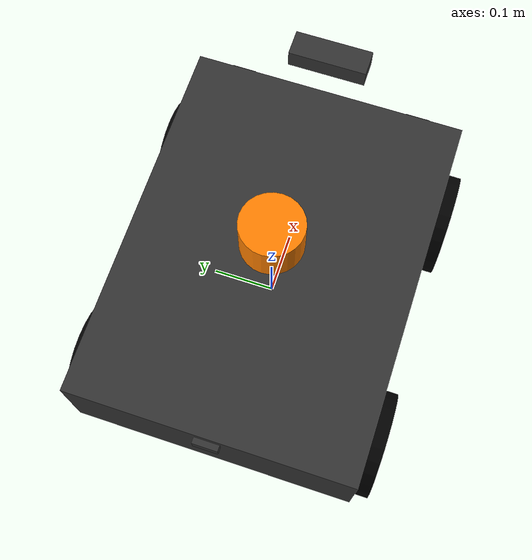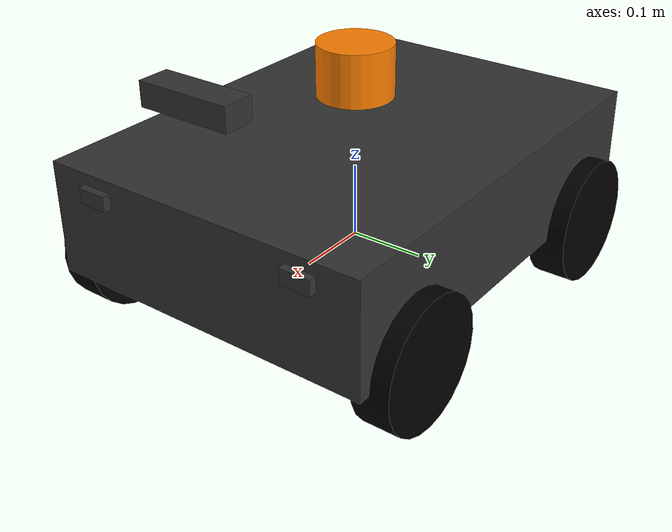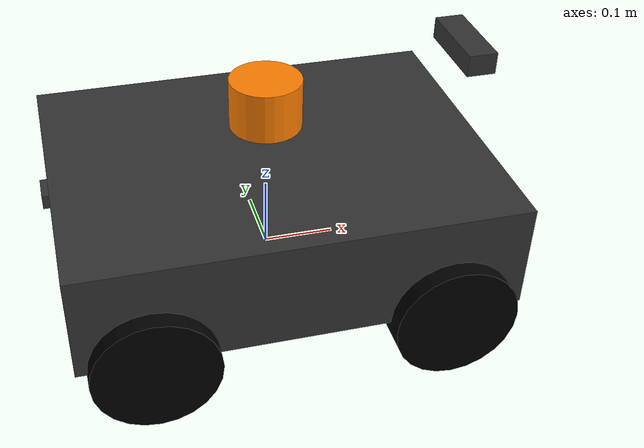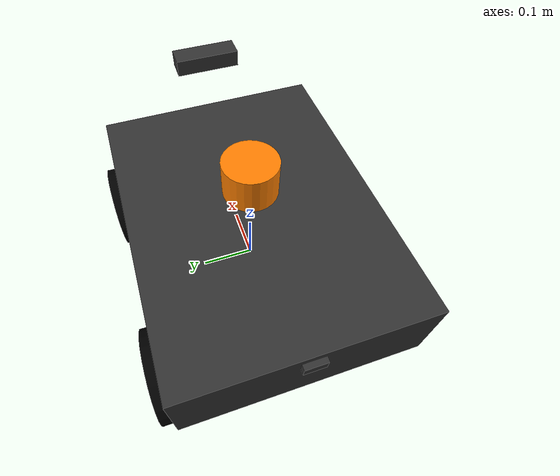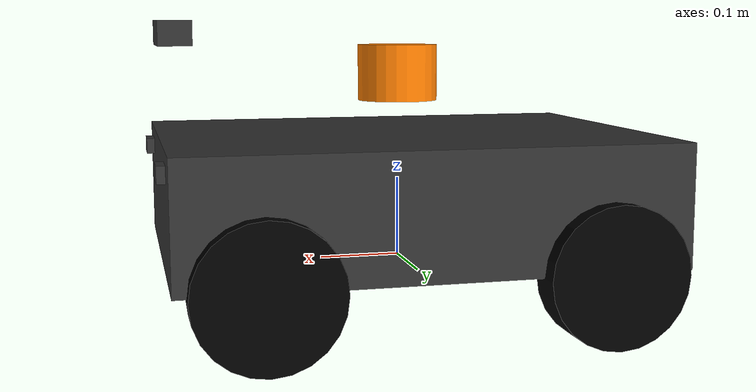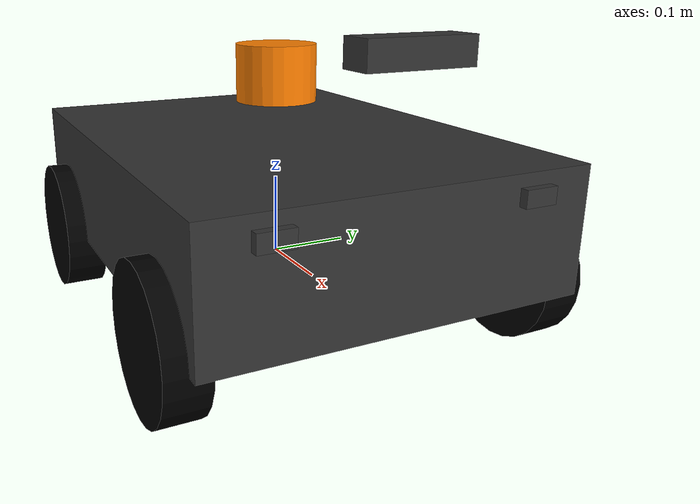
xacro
<?xml version="1.0"?>
<robot name="safer_robot" xmlns:xacro="http://www.ros.org/wiki/xacro">

  <!-- ── Constants ─────────────────────────────────────────────────────────── -->
  <xacro:property name="wheel_radius"   value="0.085"/>
  <xacro:property name="wheel_width"    value="0.05"/>
  <xacro:property name="wheel_base"     value="0.45"/>
  <xacro:property name="chassis_length" value="0.60"/>
  <xacro:property name="chassis_width"  value="0.45"/>
  <xacro:property name="chassis_height" value="0.15"/>
  <xacro:property name="chassis_mass"   value="8.0"/>
  <xacro:property name="wheel_mass"     value="0.5"/>

  <!-- ── Materials ─────────────────────────────────────────────────────────── -->
  <material name="dark_grey">
    <color rgba="0.2 0.2 0.2 1.0"/>
  </material>
  <material name="orange">
    <color rgba="1.0 0.5 0.0 1.0"/>
  </material>
  <material name="black">
    <color rgba="0.0 0.0 0.0 1.0"/>
  </material>

  <!-- ── Inertia macros ─────────────────────────────────────────────────────── -->
  <xacro:macro name="box_inertia" params="m x y z">
    <inertial>
      <mass value="${m}"/>
      <inertia ixx="${m*(y*y+z*z)/12}" ixy="0" ixz="0"
               iyy="${m*(x*x+z*z)/12}" iyz="0"
               izz="${m*(x*x+y*y)/12}"/>
    </inertial>
  </xacro:macro>

  <xacro:macro name="cylinder_inertia" params="m r h">
    <inertial>
      <mass value="${m}"/>
      <inertia ixx="${m*(3*r*r+h*h)/12}" ixy="0" ixz="0"
               iyy="${m*(3*r*r+h*h)/12}" iyz="0"
               izz="${m*r*r/2}"/>
    </inertial>
  </xacro:macro>

  <!-- ── Base footprint ─────────────────────────────────────────────────────── -->
  <link name="base_footprint"/>

  <joint name="base_footprint_joint" type="fixed">
    <parent link="base_footprint"/>
    <child  link="base_link"/>
    <origin xyz="0 0 ${wheel_radius}" rpy="0 0 0"/>
  </joint>

  <!-- ── Chassis ────────────────────────────────────────────────────────────── -->
  <link name="base_link">
    <visual>
      <geometry>
        <box size="${chassis_length} ${chassis_width} ${chassis_height}"/>
      </geometry>
      <material name="dark_grey"/>
    </visual>
    <collision>
      <geometry>
        <box size="${chassis_length} ${chassis_width} ${chassis_height}"/>
      </geometry>
    </collision>
    <xacro:box_inertia m="${chassis_mass}"
                       x="${chassis_length}"
                       y="${chassis_width}"
                       z="${chassis_height}"/>
  </link>

  <!-- ── Wheel macro ────────────────────────────────────────────────────────── -->
  <xacro:macro name="wheel" params="name x_offset y_offset">
    <link name="${name}_wheel">
      <visual>
        <origin xyz="0 0 0" rpy="${pi/2} 0 0"/>
        <geometry>
          <cylinder radius="${wheel_radius}" length="${wheel_width}"/>
        </geometry>
        <material name="black"/>
      </visual>
      <collision>
        <origin xyz="0 0 0" rpy="${pi/2} 0 0"/>
        <geometry>
          <cylinder radius="${wheel_radius}" length="${wheel_width}"/>
        </geometry>
      </collision>
      <xacro:cylinder_inertia m="${wheel_mass}" r="${wheel_radius}" h="${wheel_width}"/>
    </link>

    <joint name="${name}_wheel_joint" type="continuous">
      <parent link="base_link"/>
      <child  link="${name}_wheel"/>
      <origin xyz="${x_offset} ${y_offset} ${-chassis_height/2}" rpy="0 0 0"/>
      <axis xyz="0 1 0"/>
    </joint>
  </xacro:macro>

  <xacro:wheel name="front_left"  x_offset=" 0.20" y_offset=" ${wheel_base/2}"/>
  <xacro:wheel name="front_right" x_offset=" 0.20" y_offset="-${wheel_base/2}"/>
  <xacro:wheel name="rear_left"   x_offset="-0.20" y_offset=" ${wheel_base/2}"/>
  <xacro:wheel name="rear_right"  x_offset="-0.20" y_offset="-${wheel_base/2}"/>

  <!-- ── Depth camera ───────────────────────────────────────────────────────── -->
  <link name="camera_link">
    <visual>
      <geometry><box size="0.04 0.12 0.03"/></geometry>
      <material name="dark_grey"/>
    </visual>
  </link>
  <joint name="camera_joint" type="fixed">
    <parent link="base_link"/>
    <child  link="camera_link"/>
    <origin xyz="0.28 0.0 0.20" rpy="0 0 0"/>
  </joint>
  <link name="camera_depth_frame"/>
  <joint name="camera_depth_joint" type="fixed">
    <parent link="camera_link"/>
    <child  link="camera_depth_frame"/>
    <origin xyz="0 0 0" rpy="${-pi/2} 0 ${-pi/2}"/>
  </joint>

  <!-- ── LiDAR ──────────────────────────────────────────────────────────────── -->
  <link name="laser">
    <visual>
      <geometry><cylinder radius="0.05" length="0.07"/></geometry>
      <material name="orange"/>
    </visual>
  </link>
  <joint name="laser_joint" type="fixed">
    <parent link="base_link"/>
    <child  link="laser"/>
    <origin xyz="0 0 0.15" rpy="0 0 0"/>
  </joint>

  <!-- ── Ultrasonic sensors ─────────────────────────────────────────────────── -->
  <xacro:macro name="ultrasonic" params="name x y z rpy">
    <link name="${name}_ultrasonic">
      <visual>
        <geometry><box size="0.02 0.04 0.02"/></geometry>
        <material name="dark_grey"/>
      </visual>
    </link>
    <joint name="${name}_ultrasonic_joint" type="fixed">
      <parent link="base_link"/>
      <child  link="${name}_ultrasonic"/>
      <origin xyz="${x} ${y} ${z}" rpy="${rpy}"/>
    </joint>
  </xacro:macro>

  <xacro:ultrasonic name="front_left"  x="0.30"  y=" 0.15" z="0.05" rpy="0 0 0"/>
  <xacro:ultrasonic name="front_right" x="0.30"  y="-0.15" z="0.05" rpy="0 0 0"/>
  <xacro:ultrasonic name="rear"        x="-0.30" y="0"     z="0.05" rpy="0 0 ${pi}"/>

  <!-- ── Gazebo plugins ─────────────────────────────────────────────────────── -->
  <gazebo>
    <plugin name="differential_drive_controller"
            filename="libgazebo_ros_diff_drive.so">
      <leftJoint>front_left_wheel_joint</leftJoint>
      <rightJoint>front_right_wheel_joint</rightJoint>
      <wheelSeparation>${wheel_base}</wheelSeparation>
      <wheelDiameter>${2*wheel_radius}</wheelDiameter>
      <robotBaseFrame>base_link</robotBaseFrame>
      <publishWheelTF>false</publishWheelTF>
      <publishOdom>true</publishOdom>
      <commandTopic>cmd_vel</commandTopic>
      <odometryTopic>odom</odometryTopic>
    </plugin>
  </gazebo>

  <gazebo reference="laser">
    <sensor type="ray" name="lidar_sensor">
      <pose>0 0 0 0 0 0</pose>
      <visualize>false</visualize>
      <update_rate>10</update_rate>
      <ray>
        <scan>
          <horizontal>
            <samples>360</samples>
            <min_angle>-${pi}</min_angle>
            <max_angle>${pi}</max_angle>
          </horizontal>
        </scan>
        <range>
          <min>0.10</min>
          <max>30.0</max>
        </range>
      </ray>
      <plugin name="laser_controller" filename="libgazebo_ros_laser.so">
        <topicName>/scan</topicName>
        <frameName>laser</frameName>
      </plugin>
    </sensor>
  </gazebo>

</robot>
